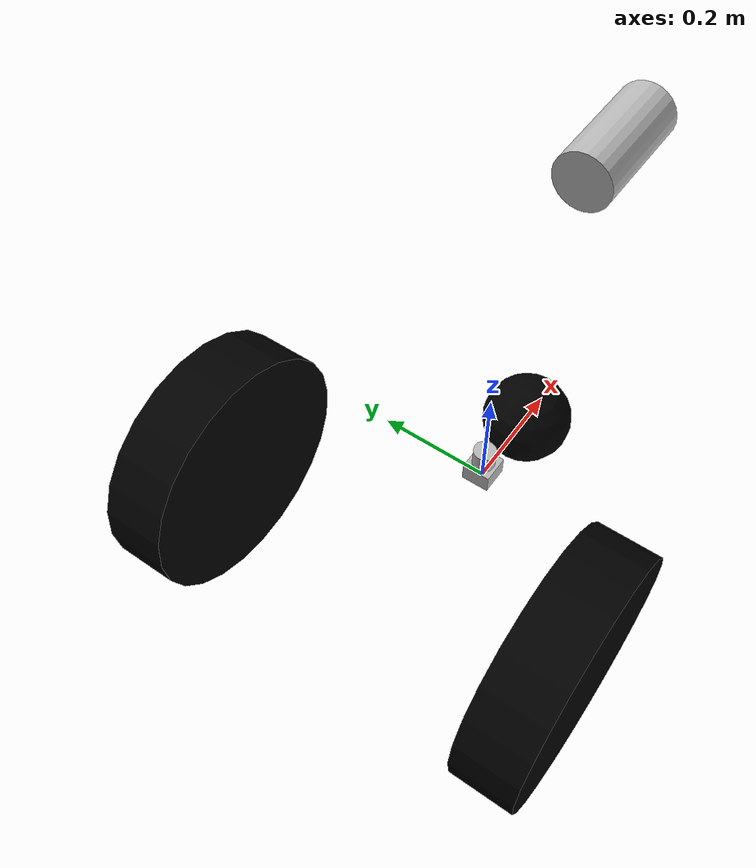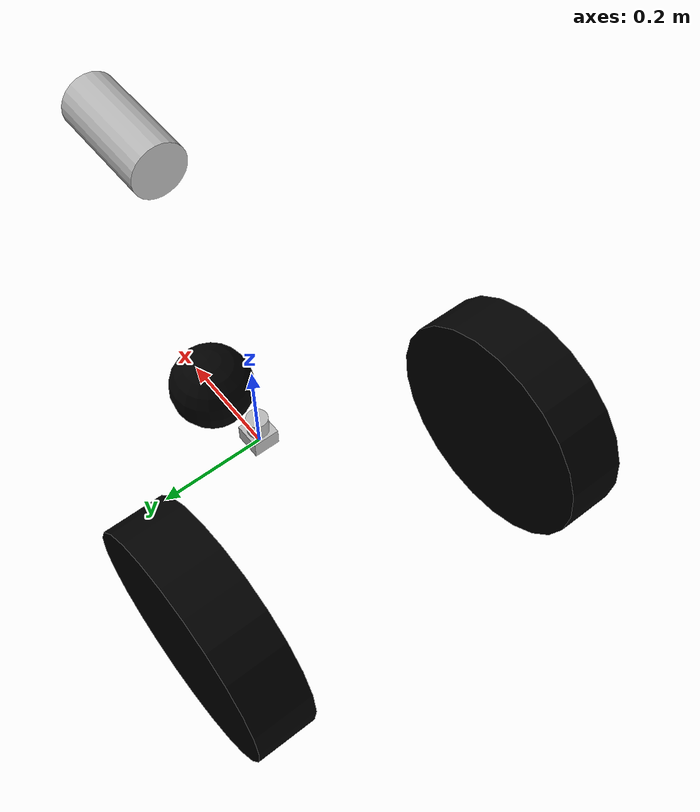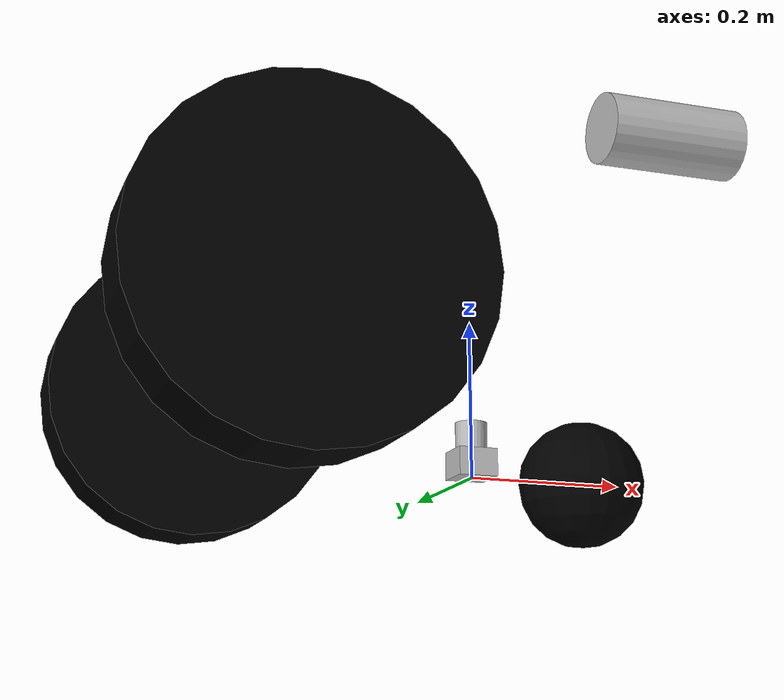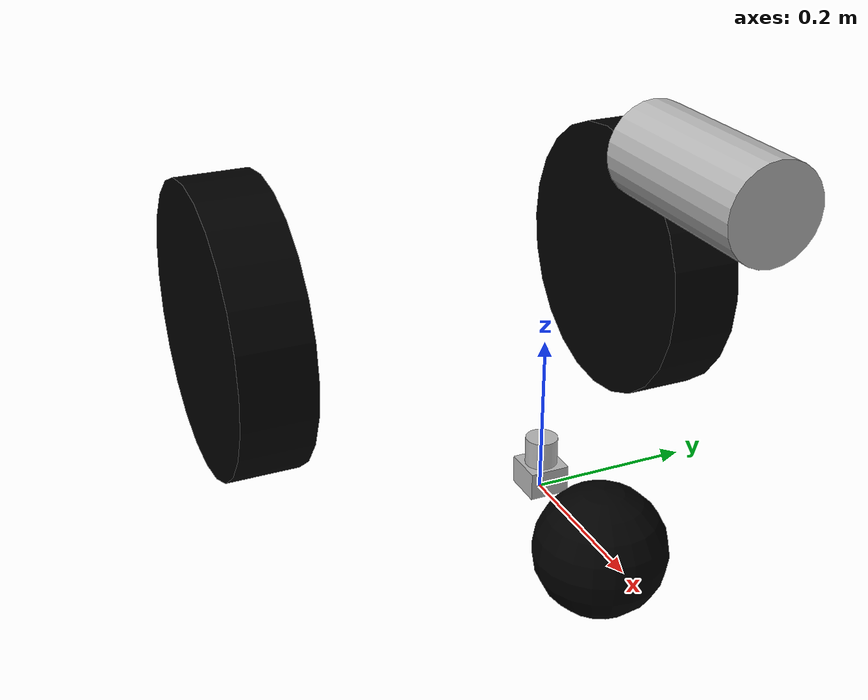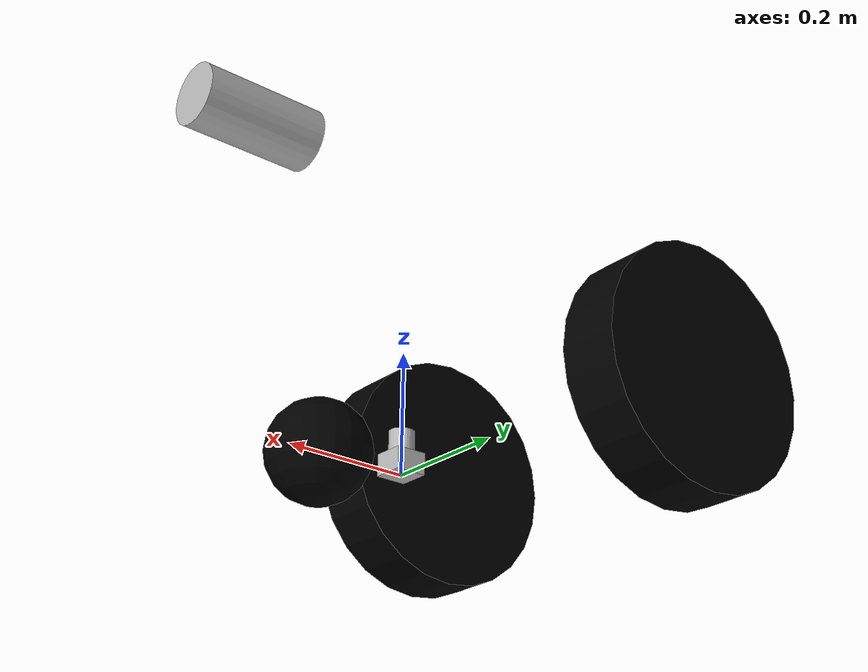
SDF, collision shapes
<sdf version='1.6'>
    <model name='ActiveSensor' canonical_link='body'>

        <link name='body'>
            <pose>0 0 0 0 0 0</pose>

            <inertial> <!--inertial properties of the link mass, inertia matix-->
                <mass>5</mass>
                <inertia>
                    <ixx>0.095329</ixx>
                    <ixy>0</ixy>
                    <ixz>0</ixz>
                    <iyy>0.381317</iyy>
                    <iyz>0</iyz>
                    <izz>0.476646</izz>
                </inertia>
            </inertial>

            <collision name='collision_base'>
                <pose>0 0 0.0175015175 0 0 0</pose>
                <geometry>
                    <box>
                        <size>0.05001062 0.05001062 0.035003035</size>
                    </box>
                </geometry>
            </collision>

            <collision name='collision_top'>
                <pose>0 0 0.0525045525 0 0 0</pose>
                <geometry>
                    <cylinder>
                        <radius>0.02</radius>
                        <length>0.035003035</length>
                    </cylinder>
                </geometry>
            </collision>

            <visual name='visual'>
                <pose>0 0 0 0 0 1.5707</pose>
                <geometry>
                    <mesh>
                        <uri>file://resources/active_sensor/meshes/hokuyo_urg04lx.dae</uri>
                        <scale>10 10 10</scale>
                    </mesh>
                </geometry>
            </visual>
        </link>

        <link name='sensor'>
            <pose>0.3 0 0.5 0 1.5707 0</pose>
            <inertial>
                <mass>0.1</mass>
                <inertia>
                    <ixx>0.000166667</ixx>
                    <iyy>0.000166667</iyy>
                    <izz>0.000166667</izz>
                </inertia>
            </inertial>

            <collision name="collision">
                <geometry>
                    <cylinder>
                        <radius>0.05</radius>
                        <length>0.2</length>
                    </cylinder>
                </geometry>
            </collision>

            <visual name="visual">
                <geometry>
                    <cylinder>
                        <radius>0.05</radius>
                        <length>0.2</length>
                    </cylinder>
                </geometry>
            </visual>

            <sensor name='gpu_lidar' type='gpu_lidar'>"
                <pose>0 0 0 0 -1.5707 0</pose>
                <topic>ActiveSensor/lidar</topic>
                <update_rate>5</update_rate>

                <ray>
                    <scan>
                        <horizontal>
                            <samples>121</samples>
                            <resolution>1</resolution>
                            <min_angle>-1.047</min_angle>
                            <max_angle>1.047</max_angle>
                        </horizontal>
                        <vertical>
                            <samples>1</samples>
                            <resolution>0.01</resolution>
                            <min_angle>0</min_angle>
                            <max_angle>0</max_angle>
                        </vertical>
                    </scan>
                    <range>
                        <min>0.08</min>
                        <max>10.0</max>
                        <resolution>1</resolution>
                    </range>
                </ray>
                <always_on>1</always_on>
                <visualize>false</visualize>
            </sensor>
        </link>

        <link name='left_wheel'>
            <pose relative_to="body">-0.3 0.3 0.15 -1.5707 0 0</pose>

            <inertial>
                <mass>1</mass>
                <inertia>
                    <ixx>0.013333</ixx>
                    <ixy>0</ixy>
                    <ixz>0</ixz>
                    <iyy>0.013333</iyy>
                    <iyz>0</iyz>
                    <izz>0.02</izz>
                </inertia>
            </inertial>

            <visual name='visual'>
                <geometry>
                    <cylinder>
                        <radius>0.2</radius>
                        <length>0.1</length>
                    </cylinder>
                </geometry>
                <material>
                    <ambient>0.0 0.0 0.0 1</ambient>
                    <diffuse>0.0 0.0 0.0 1</diffuse>
                    <specular>0.0 0.0 0.0 1</specular>
                </material>
            </visual>

            <collision name='collision'>
                <geometry>
                    <cylinder>
                        <radius>0.2</radius>
                        <length>0.1</length>
                    </cylinder>
                </geometry>
            </collision>
        </link>

        <link name='right_wheel'>
            <pose relative_to="body">-0.3 -0.3 0.15 -1.5707 0 0</pose> <!--angles are in radian-->

            <inertial>
                <mass>1</mass>
                <inertia>
                    <ixx>0.013333</ixx>
                    <ixy>0</ixy>
                    <ixz>0</ixz>
                    <iyy>0.013333</iyy>
                    <iyz>0</iyz>
                    <izz>0.02</izz>
                </inertia>
            </inertial>

            <visual name='visual'>
                <geometry>
                    <cylinder>
                        <radius>0.2</radius>
                        <length>0.1</length>
                    </cylinder>
                </geometry>
                <material>
                    <ambient>0.0 0.0 0.0 1</ambient>
                    <diffuse>0.0 0.0 0.0 1</diffuse>
                    <specular>0.0 0.0 0.0 1</specular>
                </material>
            </visual>

            <collision name='collision'>
                <geometry>
                    <cylinder>
                        <radius>0.2</radius>
                        <length>0.1</length>
                    </cylinder>
                </geometry>
            </collision>
        </link>

        <frame name="caster_frame" attached_to='body'>
            <pose>0.15 0 0.0 0 0 0</pose>
        </frame>

        <link name='caster'>
            <pose relative_to='caster_frame'/>

            <inertial>
                <mass>3</mass>
                <inertia>
                    <ixx>0.016</ixx>
                    <ixy>0</ixy>
                    <ixz>0</ixz>
                    <iyy>0.016</iyy>
                    <iyz>0</iyz>
                    <izz>0.016</izz>
                </inertia>
            </inertial>

            <visual name='visual'>
                <geometry>
                    <sphere>
                        <radius>0.08</radius>
                    </sphere>
                </geometry>
                <material>
                    <ambient>0.0 0.0 0.0 1</ambient>
                    <diffuse>0.0 0.0 0.0 1</diffuse>
                    <specular>0.0 0.0 0.0 1</specular>
                </material>
            </visual>

            <collision name='collision'>
                <geometry>
                    <sphere>
                        <radius>0.08</radius>
                    </sphere>
                </geometry>
            </collision>
        </link>

        <joint name='left_wheel_joint' type='revolute'>
            <pose relative_to='left_wheel'/>
            <parent>body</parent>
            <child>left_wheel</child>
            <axis>
                <xyz expressed_in='__model__'>0 1 0</xyz> <!--can be defined as any frame or even arbitrary frames-->
                <limit>
                    <lower>-1.79769e+308</lower>    <!--negative infinity-->
                    <upper>1.79769e+308</upper>     <!--positive infinity-->
                </limit>
            </axis>
        </joint>

        <joint name="lidar_joint" type="fixed">
            <parent>body</parent>
            <child>sensor</child>
            <pose>0 0 0.15 0 0 0</pose>
        </joint>

        <joint name='right_wheel_joint' type='revolute'>
            <pose relative_to='right_wheel'/>
            <parent>body</parent>
            <child>right_wheel</child>
            <axis>
                <xyz expressed_in='__model__'>0 1 0</xyz>
                <limit>
                    <lower>-1.79769e+308</lower>    <!--negative infinity-->
                    <upper>1.79769e+308</upper>     <!--positive infinity-->
                </limit>
            </axis>
        </joint>

        <joint name='caster_wheel' type='ball'>
            <parent>body</parent>
            <child>caster</child>
        </joint>

        <plugin filename="libignition-gazebo-diff-drive-system.so" name="ignition::gazebo::systems::DiffDrive">
            <left_joint>left_wheel_joint</left_joint>
            <right_joint>right_wheel_joint</right_joint>
            <wheel_separation>2</wheel_separation>
            <wheel_radius>0.1</wheel_radius>
            <topic>ActiveSensor/cmd_vel</topic>
        </plugin>

        <plugin name='ignition::gazebo::systems::OdometryPublisher' filename='ignition-gazebo-odometry-publisher-system'>
            <odom_topic>/ActiveSensor/odometry</odom_topic>
            <dimensions>3</dimensions>
        </plugin>
    </model>
</sdf>
